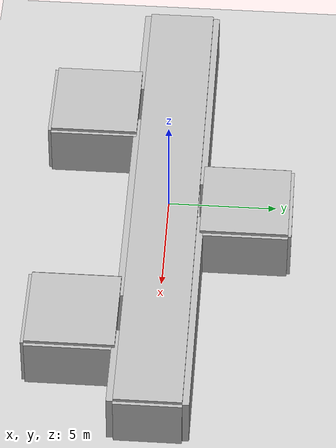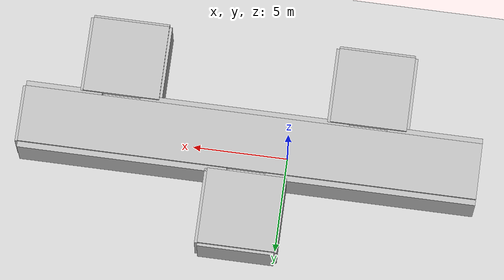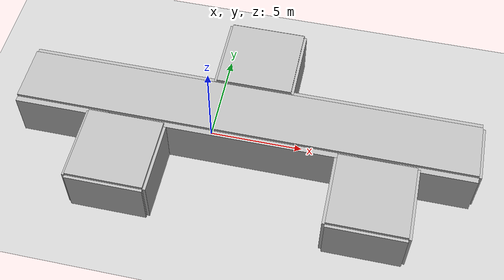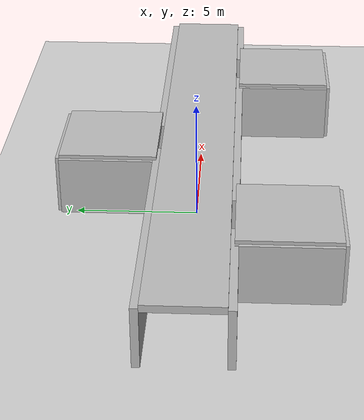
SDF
<sdf version="1.6">
 <world name="tunnel_with_rooms">
  <plugin name="gas_field_plugin" filename="libgas_field_plugin.so">
   <gas_type>CO</gas_type>
   <base_concentration>0.05</base_concentration>
   <hotspot><position>2 0 0</position><radius>3.0</radius><peak_concentration>0.9</peak_concentration></hotspot>
  </plugin>
  <include><uri>model://sun</uri></include>
  <physics type="ode" name="default">
   <max_step_size>0.001</max_step_size>
   <real_time_update_rate>1000</real_time_update_rate>
  </physics>
  <model name="floor">
   <static>true</static>
   <link name="link">
    <collision name="c"><geometry><plane><normal>0 0 1</normal><size>120 120</size></plane></geometry></collision>
    <visual name="v"><geometry><plane><normal>0 0 1</normal><size>120 120</size></plane></geometry></visual>
   </link>
  </model>
  <model name="left_wall_seg1">
   <static>true</static>
   <pose>-7.5 -1.65 1.25 0 0 0</pose>
   <link name="link">
    <collision name="c"><geometry><box><size>5 0.3 2.5</size></box></geometry></collision>
    <visual name="v"><geometry><box><size>5 0.3 2.5</size></box></geometry></visual>
   </link>
  </model>
  <model name="left_wall_seg2">
   <static>true</static>
   <pose>2.5 -1.65 1.25 0 0 0</pose>
   <link name="link">
    <collision name="c"><geometry><box><size>11 0.3 2.5</size></box></geometry></collision>
    <visual name="v"><geometry><box><size>11 0.3 2.5</size></box></geometry></visual>
   </link>
  </model>
  <model name="left_wall_seg3">
   <static>true</static>
   <pose>12 -1.65 1.25 0 0 0</pose>
   <link name="link">
    <collision name="c"><geometry><box><size>4 0.3 2.5</size></box></geometry></collision>
    <visual name="v"><geometry><box><size>4 0.3 2.5</size></box></geometry></visual>
   </link>
  </model>
  <model name="right_wall_seg1">
   <static>true</static>
   <pose>-4.5 1.65 1.25 0 0 0</pose>
   <link name="link">
    <collision name="c"><geometry><box><size>11 0.3 2.5</size></box></geometry></collision>
    <visual name="v"><geometry><box><size>11 0.3 2.5</size></box></geometry></visual>
   </link>
  </model>
  <model name="right_wall_seg2">
   <static>true</static>
   <pose>8.5 1.65 1.25 0 0 0</pose>
   <link name="link">
    <collision name="c"><geometry><box><size>11 0.3 2.5</size></box></geometry></collision>
    <visual name="v"><geometry><box><size>11 0.3 2.5</size></box></geometry></visual>
   </link>
  </model>
  <model name="corridor_ceiling">
   <static>true</static>
   <pose>2 0 2.5 0 0 0</pose>
   <link name="link">
    <collision name="c"><geometry><box><size>24 3 0.3</size></box></geometry></collision>
    <visual name="v"><geometry><box><size>24 3 0.3</size></box></geometry></visual>
   </link>
  </model>
  <model name="corridor_backwall">
   <static>true</static>
   <pose>14 0 1.25 0 0 0</pose>
   <link name="link">
    <collision name="c"><geometry><box><size>0.3 3 2.5</size></box></geometry></collision>
    <visual name="v"><geometry><box><size>0.3 3 2.5</size></box></geometry></visual>
   </link>
  </model>
  <model name="roomL1_back">
   <static>true</static>
   <pose>-4 -5.65 1.25 0 0 0</pose>
   <link name="link">
    <collision name="c"><geometry><box><size>4 0.3 2.5</size></box></geometry></collision>
    <visual name="v"><geometry><box><size>4 0.3 2.5</size></box></geometry></visual>
   </link>
  </model>
  <model name="roomL1_left">
   <static>true</static>
   <pose>-6 -3.65 1.25 0 0 0</pose>
   <link name="link">
    <collision name="c"><geometry><box><size>0.3 4 2.5</size></box></geometry></collision>
    <visual name="v"><geometry><box><size>0.3 4 2.5</size></box></geometry></visual>
   </link>
  </model>
  <model name="roomL1_right">
   <static>true</static>
   <pose>-2 -3.65 1.25 0 0 0</pose>
   <link name="link">
    <collision name="c"><geometry><box><size>0.3 4 2.5</size></box></geometry></collision>
    <visual name="v"><geometry><box><size>0.3 4 2.5</size></box></geometry></visual>
   </link>
  </model>
  <model name="roomL1_ceiling">
   <static>true</static>
   <pose>-4 -3.65 2.5 0 0 0</pose>
   <link name="link">
    <collision name="c"><geometry><box><size>4 4 0.3</size></box></geometry></collision>
    <visual name="v"><geometry><box><size>4 4 0.3</size></box></geometry></visual>
   </link>
  </model>
  <model name="roomR1_back">
   <static>true</static>
   <pose>2 5.65 1.25 0 0 0</pose>
   <link name="link">
    <collision name="c"><geometry><box><size>4 0.3 2.5</size></box></geometry></collision>
    <visual name="v"><geometry><box><size>4 0.3 2.5</size></box></geometry></visual>
   </link>
  </model>
  <model name="roomR1_left">
   <static>true</static>
   <pose>0 3.65 1.25 0 0 0</pose>
   <link name="link">
    <collision name="c"><geometry><box><size>0.3 4 2.5</size></box></geometry></collision>
    <visual name="v"><geometry><box><size>0.3 4 2.5</size></box></geometry></visual>
   </link>
  </model>
  <model name="roomR1_right">
   <static>true</static>
   <pose>4 3.65 1.25 0 0 0</pose>
   <link name="link">
    <collision name="c"><geometry><box><size>0.3 4 2.5</size></box></geometry></collision>
    <visual name="v"><geometry><box><size>0.3 4 2.5</size></box></geometry></visual>
   </link>
  </model>
  <model name="roomR1_ceiling">
   <static>true</static>
   <pose>2 3.65 2.5 0 0 0</pose>
   <link name="link">
    <collision name="c"><geometry><box><size>4 4 0.3</size></box></geometry></collision>
    <visual name="v"><geometry><box><size>4 4 0.3</size></box></geometry></visual>
   </link>
  </model>
  <model name="roomL2_back">
   <static>true</static>
   <pose>9 -5.65 1.25 0 0 0</pose>
   <link name="link">
    <collision name="c"><geometry><box><size>4 0.3 2.5</size></box></geometry></collision>
    <visual name="v"><geometry><box><size>4 0.3 2.5</size></box></geometry></visual>
   </link>
  </model>
  <model name="roomL2_left">
   <static>true</static>
   <pose>7 -3.65 1.25 0 0 0</pose>
   <link name="link">
    <collision name="c"><geometry><box><size>0.3 4 2.5</size></box></geometry></collision>
    <visual name="v"><geometry><box><size>0.3 4 2.5</size></box></geometry></visual>
   </link>
  </model>
  <model name="roomL2_right">
   <static>true</static>
   <pose>11 -3.65 1.25 0 0 0</pose>
   <link name="link">
    <collision name="c"><geometry><box><size>0.3 4 2.5</size></box></geometry></collision>
    <visual name="v"><geometry><box><size>0.3 4 2.5</size></box></geometry></visual>
   </link>
  </model>
  <model name="roomL2_ceiling">
   <static>true</static>
   <pose>9 -3.65 2.5 0 0 0</pose>
   <link name="link">
    <collision name="c"><geometry><box><size>4 4 0.3</size></box></geometry></collision>
    <visual name="v"><geometry><box><size>4 4 0.3</size></box></geometry></visual>
   </link>
  </model>
  <light type="point" name="lamp_corridor_front">
   <pose>-6 0 2.2 0 0 0</pose>
   <diffuse>0.9 0.9 0.9 1</diffuse>
   <attenuation><range>12</range><linear>0.25</linear></attenuation>
  </light>
  <light type="point" name="lamp_corridor_back">
   <pose>8 0 2.2 0 0 0</pose>
   <diffuse>0.9 0.9 0.9 1</diffuse>
   <attenuation><range>12</range><linear>0.25</linear></attenuation>
  </light>
  <light type="point" name="lamp_roomL1"><pose>-4 -3.2 2.2 0 0 0</pose><diffuse>0.8 0.8 0.8 1</diffuse></light>
  <light type="point" name="lamp_roomR1"><pose>2 3.2 2.2 0 0 0</pose><diffuse>0.8 0.8 0.8 1</diffuse></light>
  <light type="point" name="lamp_roomL2"><pose>9 -3.2 2.2 0 0 0</pose><diffuse>0.8 0.8 0.8 1</diffuse></light>
 </world>
</sdf>
